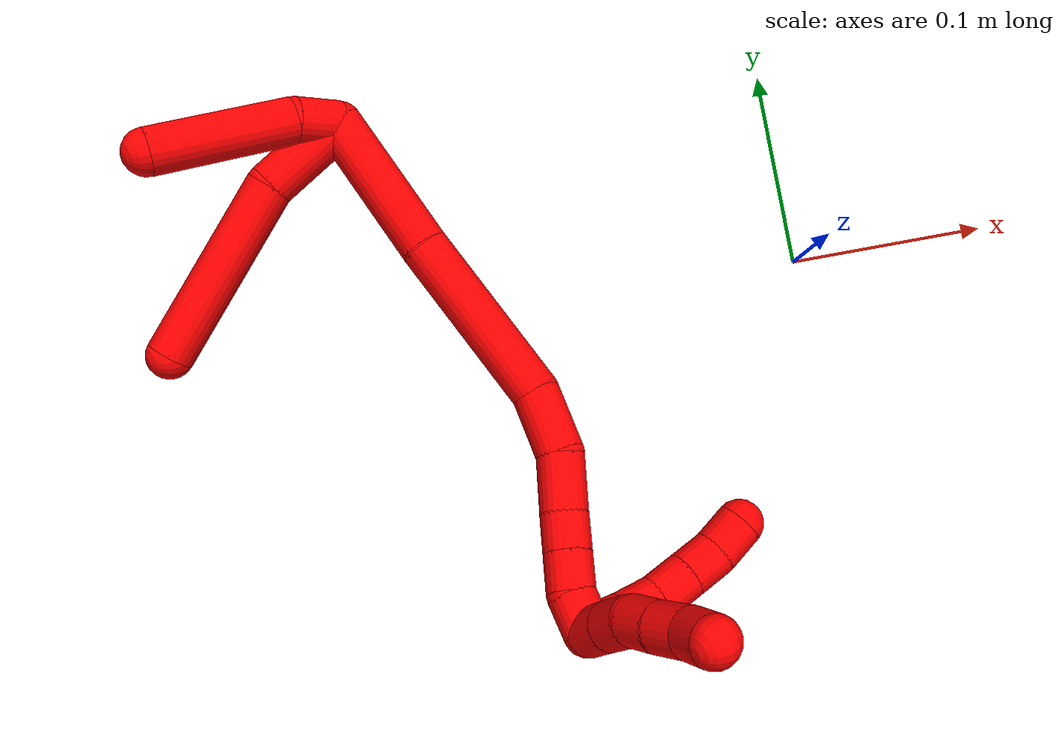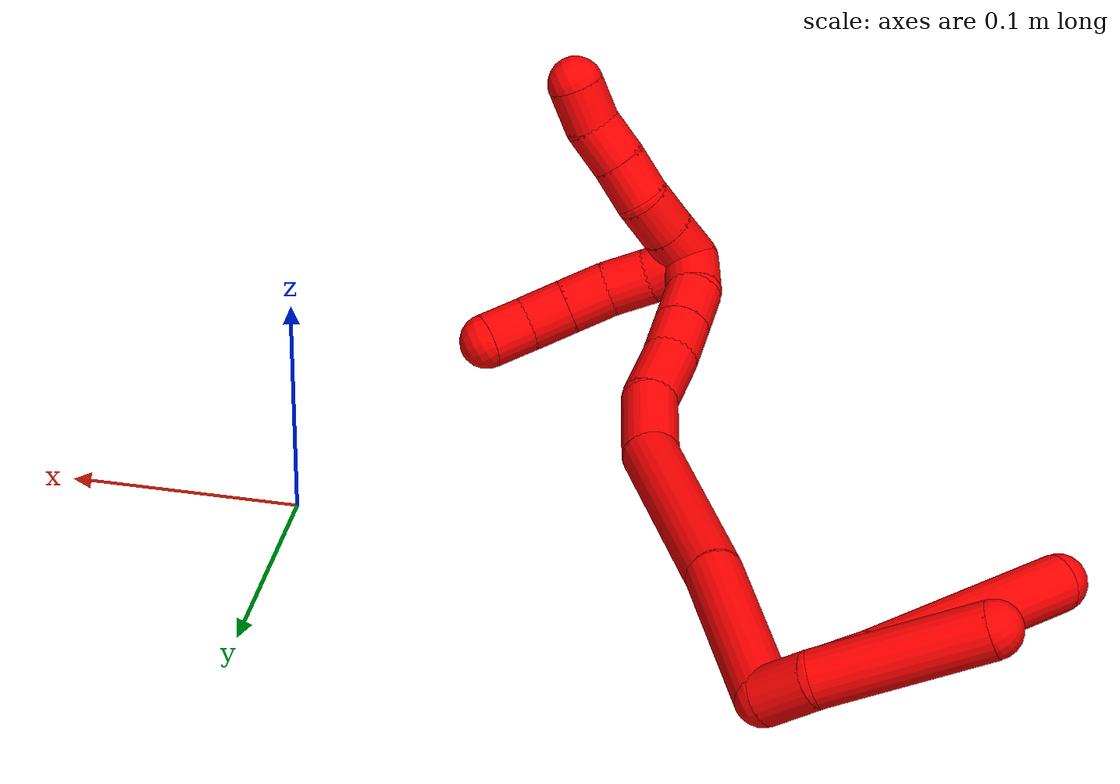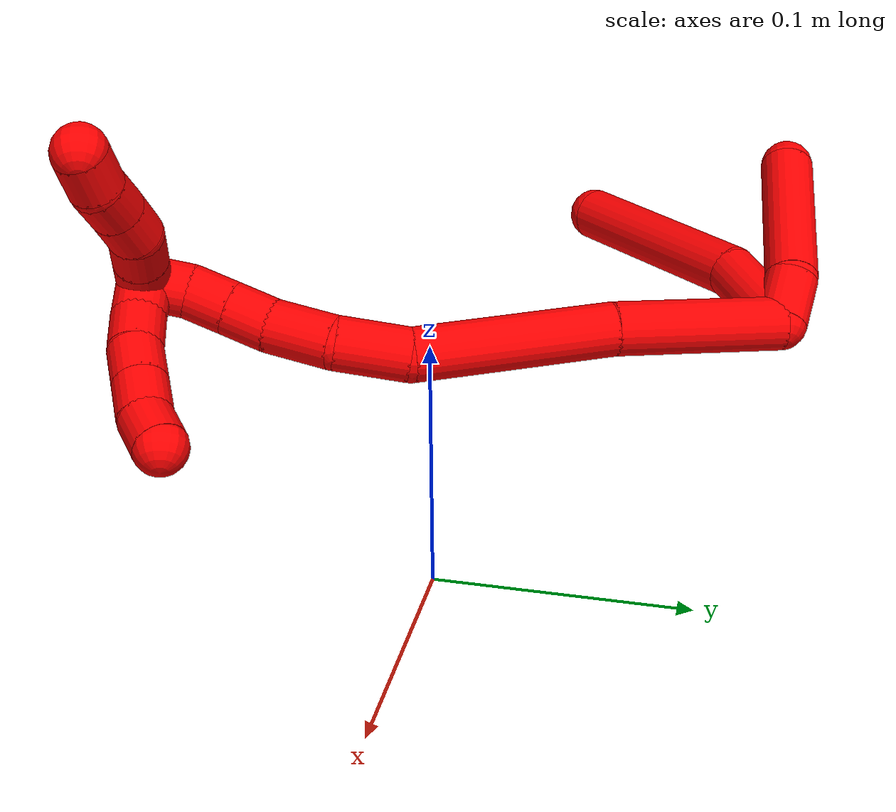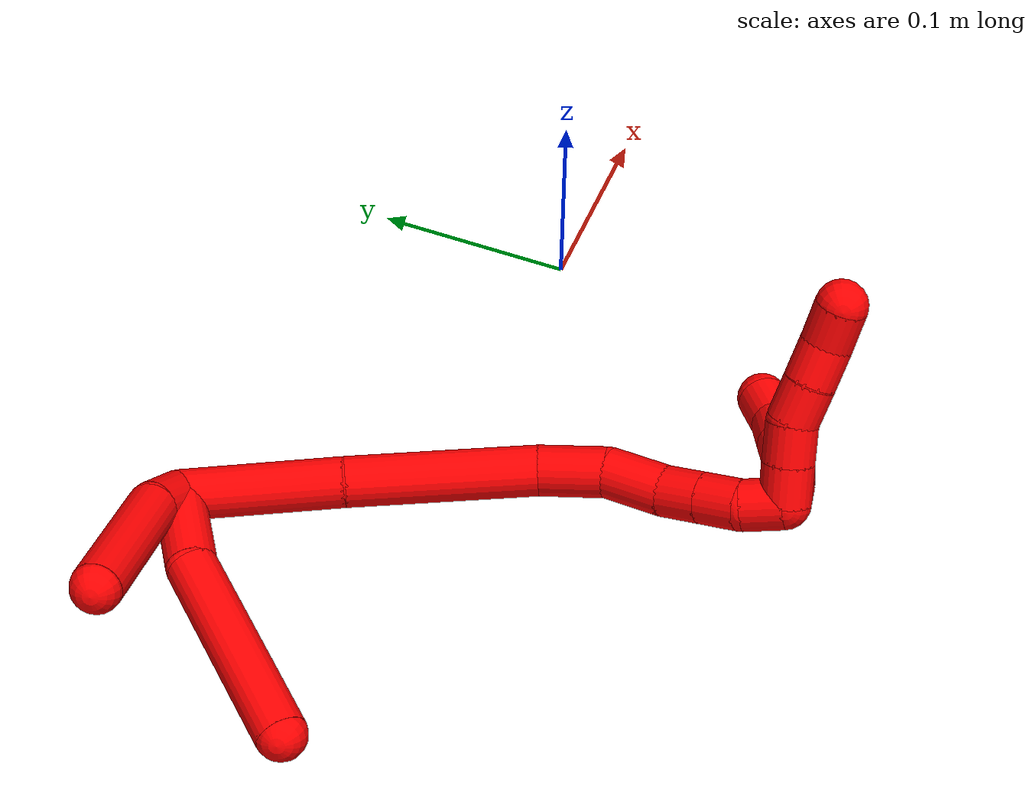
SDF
<sdf version="1.7">
 <world name="default">
  <model name="2">
   <static>0</static>
   <link name="2">
    <collision name="collision-cylinder-e_1_2_8">
     <pose>-0.004484 -0.010913 0.021138 0.476577 -0.186309 -0.045379</pose>
     <geometry><cylinder><radius>0.0125</radius><length>0.048415</length></cylinder></geometry>
     <surface>
      <friction><ode><mu>1.16</mu><mu2>1.16</mu2><slip1>0</slip1><slip2>0</slip2></ode></friction>
      <contact><ode><kp>1e+06</kp><kd>1</kd><max_vel>0</max_vel><min_depth>0.001</min_depth></ode></contact>
     </surface>
    </collision>
    <visual name="visual-cylinder-e_1_2_8">
     <pose>-0.004484 -0.010913 0.021138 0.476577 -0.186309 -0.045379</pose>
     <geometry><cylinder><radius>0.0125</radius><length>0.048415</length></cylinder></geometry>
     <material><ambient>1 0 0 1</ambient></material>
    </visual>
    <collision name="collision-cylinder-e_2_8_6">
     <pose>-0.016274 -0.05754 0.077645 0.790247 -0.144332 -0.060281</pose>
     <geometry><cylinder><radius>0.0125</radius><length>0.101585</length></cylinder></geometry>
     <surface>
      <friction><ode><mu>1.16</mu><mu2>1.16</mu2><slip1>0</slip1><slip2>0</slip2></ode></friction>
      <contact><ode><kp>1e+06</kp><kd>1</kd><max_vel>0</max_vel><min_depth>0.001</min_depth></ode></contact>
     </surface>
    </collision>
    <visual name="visual-cylinder-e_2_8_6">
     <pose>-0.016274 -0.05754 0.077645 0.790247 -0.144332 -0.060281</pose>
     <geometry><cylinder><radius>0.0125</radius><length>0.101585</length></cylinder></geometry>
     <material><ambient>1 0 0 1</ambient></material>
    </visual>
    <collision name="collision-cylinder-e_1_2_9">
     <pose>-0.000973 0.004117 0.011666 -0.339281 -0.078489 0.013451</pose>
     <geometry><cylinder><radius>0.0125</radius><length>0.024818</length></cylinder></geometry>
     <surface>
      <friction><ode><mu>1.16</mu><mu2>1.16</mu2><slip1>0</slip1><slip2>0</slip2></ode></friction>
      <contact><ode><kp>1e+06</kp><kd>1</kd><max_vel>0</max_vel><min_depth>0.001</min_depth></ode></contact>
     </surface>
    </collision>
    <visual name="visual-cylinder-e_1_2_9">
     <pose>-0.000973 0.004117 0.011666 -0.339281 -0.078489 0.013451</pose>
     <geometry><cylinder><radius>0.0125</radius><length>0.024818</length></cylinder></geometry>
     <material><ambient>1 0 0 1</ambient></material>
    </visual>
    <collision name="collision-cylinder-e_2_9_5">
     <pose>-0.009214 0.009836 0.060178 -0.043451 -0.19456 0.004241</pose>
     <geometry><cylinder><radius>0.0125</radius><length>0.075182</length></cylinder></geometry>
     <surface>
      <friction><ode><mu>1.16</mu><mu2>1.16</mu2><slip1>0</slip1><slip2>0</slip2></ode></friction>
      <contact><ode><kp>1e+06</kp><kd>1</kd><max_vel>0</max_vel><min_depth>0.001</min_depth></ode></contact>
     </surface>
    </collision>
    <visual name="visual-cylinder-e_2_9_5">
     <pose>-0.009214 0.009836 0.060178 -0.043451 -0.19456 0.004241</pose>
     <geometry><cylinder><radius>0.0125</radius><length>0.075182</length></cylinder></geometry>
     <material><ambient>1 0 0 1</ambient></material>
    </visual>
    <collision name="collision-cylinder-e_1_2_10">
     <pose>0.024044 -0.032022 -0.003699 1.6858 0.640868 0.713003</pose>
     <geometry><cylinder><radius>0.0125</radius><length>0.080428</length></cylinder></geometry>
     <surface>
      <friction><ode><mu>1.16</mu><mu2>1.16</mu2><slip1>0</slip1><slip2>0</slip2></ode></friction>
      <contact><ode><kp>1e+06</kp><kd>1</kd><max_vel>0</max_vel><min_depth>0.001</min_depth></ode></contact>
     </surface>
    </collision>
    <visual name="visual-cylinder-e_1_2_10">
     <pose>0.024044 -0.032022 -0.003699 1.6858 0.640868 0.713003</pose>
     <geometry><cylinder><radius>0.0125</radius><length>0.080428</length></cylinder></geometry>
     <material><ambient>1 0 0 1</ambient></material>
    </visual>
    <collision name="collision-cylinder-e_2_10_11">
     <pose>0.074154 -0.102559 -0.015297 1.77309 0.58546 0.707835</pose>
     <geometry><cylinder><radius>0.0125</radius><length>0.094346</length></cylinder></geometry>
     <surface>
      <friction><ode><mu>1.16</mu><mu2>1.16</mu2><slip1>0</slip1><slip2>0</slip2></ode></friction>
      <contact><ode><kp>1e+06</kp><kd>1</kd><max_vel>0</max_vel><min_depth>0.001</min_depth></ode></contact>
     </surface>
    </collision>
    <visual name="visual-cylinder-e_2_10_11">
     <pose>0.074154 -0.102559 -0.015297 1.77309 0.58546 0.707835</pose>
     <geometry><cylinder><radius>0.0125</radius><length>0.094346</length></cylinder></geometry>
     <material><ambient>1 0 0 1</ambient></material>
    </visual>
    <collision name="collision-cylinder-e_3_11_12">
     <pose>0.110061 -0.154836 -0.020586 1.38337 0.612389 0.512138</pose>
     <geometry><cylinder><radius>0.0125</radius><length>0.034236</length></cylinder></geometry>
     <surface>
      <friction><ode><mu>1.16</mu><mu2>1.16</mu2><slip1>0</slip1><slip2>0</slip2></ode></friction>
      <contact><ode><kp>1e+06</kp><kd>1</kd><max_vel>0</max_vel><min_depth>0.001</min_depth></ode></contact>
     </surface>
    </collision>
    <visual name="visual-cylinder-e_3_11_12">
     <pose>0.110061 -0.154836 -0.020586 1.38337 0.612389 0.512138</pose>
     <geometry><cylinder><radius>0.0125</radius><length>0.034236</length></cylinder></geometry>
     <material><ambient>1 0 0 1</ambient></material>
    </visual>
    <collision name="collision-cylinder-e_4_12_13">
     <pose>0.125453 -0.181393 -0.012091 1.13967 0.375493 0.242268</pose>
     <geometry><cylinder><radius>0.0125</radius><length>0.030277</length></cylinder></geometry>
     <surface>
      <friction><ode><mu>1.16</mu><mu2>1.16</mu2><slip1>0</slip1><slip2>0</slip2></ode></friction>
      <contact><ode><kp>1e+06</kp><kd>1</kd><max_vel>0</max_vel><min_depth>0.001</min_depth></ode></contact>
     </surface>
    </collision>
    <visual name="visual-cylinder-e_4_12_13">
     <pose>0.125453 -0.181393 -0.012091 1.13967 0.375493 0.242268</pose>
     <geometry><cylinder><radius>0.0125</radius><length>0.030277</length></cylinder></geometry>
     <material><ambient>1 0 0 1</ambient></material>
    </visual>
    <collision name="collision-cylinder-e_5_13_14">
     <pose>0.136018 -0.201728 -0.001721 1.0342 0.519123 0.299782</pose>
     <geometry><cylinder><radius>0.0125</radius><length>0.020209</length></cylinder></geometry>
     <surface>
      <friction><ode><mu>1.16</mu><mu2>1.16</mu2><slip1>0</slip1><slip2>0</slip2></ode></friction>
      <contact><ode><kp>1e+06</kp><kd>1</kd><max_vel>0</max_vel><min_depth>0.001</min_depth></ode></contact>
     </surface>
    </collision>
    <visual name="visual-cylinder-e_5_13_14">
     <pose>0.136018 -0.201728 -0.001721 1.0342 0.519123 0.299782</pose>
     <geometry><cylinder><radius>0.0125</radius><length>0.020209</length></cylinder></geometry>
     <material><ambient>1 0 0 1</ambient></material>
    </visual>
    <collision name="collision-cylinder-e_6_14_15">
     <pose>0.14601 -0.216842 0.007236 1.0375 0.51516 0.298549</pose>
     <geometry><cylinder><radius>0.0125</radius><length>0.020215</length></cylinder></geometry>
     <surface>
      <friction><ode><mu>1.16</mu><mu2>1.16</mu2><slip1>0</slip1><slip2>0</slip2></ode></friction>
      <contact><ode><kp>1e+06</kp><kd>1</kd><max_vel>0</max_vel><min_depth>0.001</min_depth></ode></contact>
     </surface>
    </collision>
    <visual name="visual-cylinder-e_6_14_15">
     <pose>0.14601 -0.216842 0.007236 1.0375 0.51516 0.298549</pose>
     <geometry><cylinder><radius>0.0125</radius><length>0.020215</length></cylinder></geometry>
     <material><ambient>1 0 0 1</ambient></material>
    </visual>
    <collision name="collision-cylinder-e_7_15_1">
     <pose>0.157451 -0.232097 0.01318 1.38132 0.690521 0.577852</pose>
     <geometry><cylinder><radius>0.0125</radius><length>0.020289</length></cylinder></geometry>
     <surface>
      <friction><ode><mu>1.16</mu><mu2>1.16</mu2><slip1>0</slip1><slip2>0</slip2></ode></friction>
      <contact><ode><kp>1e+06</kp><kd>1</kd><max_vel>0</max_vel><min_depth>0.001</min_depth></ode></contact>
     </surface>
    </collision>
    <visual name="visual-cylinder-e_7_15_1">
     <pose>0.157451 -0.232097 0.01318 1.38132 0.690521 0.577852</pose>
     <geometry><cylinder><radius>0.0125</radius><length>0.020289</length></cylinder></geometry>
     <material><ambient>1 0 0 1</ambient></material>
    </visual>
    <collision name="collision-cylinder-e_1_1_16">
     <pose>0.164992 -0.240366 0.004729 3.0824 0.108091 2.14008</pose>
     <geometry><cylinder><radius>0.0125</radius><length>0.02</length></cylinder></geometry>
     <surface>
      <friction><ode><mu>1.16</mu><mu2>1.16</mu2><slip1>0</slip1><slip2>0</slip2></ode></friction>
      <contact><ode><kp>1e+06</kp><kd>1</kd><max_vel>0</max_vel><min_depth>0.001</min_depth></ode></contact>
     </surface>
    </collision>
    <visual name="visual-cylinder-e_1_1_16">
     <pose>0.164992 -0.240366 0.004729 3.0824 0.108091 2.14008</pose>
     <geometry><cylinder><radius>0.0125</radius><length>0.02</length></cylinder></geometry>
     <material><ambient>1 0 0 1</ambient></material>
    </visual>
    <collision name="collision-cylinder-e_2_16_17">
     <pose>0.167951 -0.240208 -0.014988 -3.06559 0.1892 -2.37938</pose>
     <geometry><cylinder><radius>0.0125</radius><length>0.02</length></cylinder></geometry>
     <surface>
      <friction><ode><mu>1.16</mu><mu2>1.16</mu2><slip1>0</slip1><slip2>0</slip2></ode></friction>
      <contact><ode><kp>1e+06</kp><kd>1</kd><max_vel>0</max_vel><min_depth>0.001</min_depth></ode></contact>
     </surface>
    </collision>
    <visual name="visual-cylinder-e_2_16_17">
     <pose>0.167951 -0.240208 -0.014988 -3.06559 0.1892 -2.37938</pose>
     <geometry><cylinder><radius>0.0125</radius><length>0.02</length></cylinder></geometry>
     <material><ambient>1 0 0 1</ambient></material>
    </visual>
    <collision name="collision-cylinder-e_3_17_18">
     <pose>0.170714 -0.237266 -0.034497 -2.91928 0.088364 -0.754265</pose>
     <geometry><cylinder><radius>0.0125</radius><length>0.02</length></cylinder></geometry>
     <surface>
      <friction><ode><mu>1.16</mu><mu2>1.16</mu2><slip1>0</slip1><slip2>0</slip2></ode></friction>
      <contact><ode><kp>1e+06</kp><kd>1</kd><max_vel>0</max_vel><min_depth>0.001</min_depth></ode></contact>
     </surface>
    </collision>
    <visual name="visual-cylinder-e_3_17_18">
     <pose>0.170714 -0.237266 -0.034497 -2.91928 0.088364 -0.754265</pose>
     <geometry><cylinder><radius>0.0125</radius><length>0.02</length></cylinder></geometry>
     <material><ambient>1 0 0 1</ambient></material>
    </visual>
    <collision name="collision-cylinder-e_4_18_19">
     <pose>0.172444 -0.232913 -0.053941 -2.92342 0.084817 -0.739292</pose>
     <geometry><cylinder><radius>0.0125</radius><length>0.02</length></cylinder></geometry>
     <surface>
      <friction><ode><mu>1.16</mu><mu2>1.16</mu2><slip1>0</slip1><slip2>0</slip2></ode></friction>
      <contact><ode><kp>1e+06</kp><kd>1</kd><max_vel>0</max_vel><min_depth>0.001</min_depth></ode></contact>
     </surface>
    </collision>
    <visual name="visual-cylinder-e_4_18_19">
     <pose>0.172444 -0.232913 -0.053941 -2.92342 0.084817 -0.739292</pose>
     <geometry><cylinder><radius>0.0125</radius><length>0.02</length></cylinder></geometry>
     <material><ambient>1 0 0 1</ambient></material>
    </visual>
    <collision name="collision-cylinder-e_5_19_4">
     <pose>0.174251 -0.226189 -0.072513 -2.66485 0.096122 -0.390829</pose>
     <geometry><cylinder><radius>0.0125</radius><length>0.02</length></cylinder></geometry>
     <surface>
      <friction><ode><mu>1.16</mu><mu2>1.16</mu2><slip1>0</slip1><slip2>0</slip2></ode></friction>
      <contact><ode><kp>1e+06</kp><kd>1</kd><max_vel>0</max_vel><min_depth>0.001</min_depth></ode></contact>
     </surface>
    </collision>
    <visual name="visual-cylinder-e_5_19_4">
     <pose>0.174251 -0.226189 -0.072513 -2.66485 0.096122 -0.390829</pose>
     <geometry><cylinder><radius>0.0125</radius><length>0.02</length></cylinder></geometry>
     <material><ambient>1 0 0 1</ambient></material>
    </visual>
    <collision name="collision-cylinder-e_1_1_20">
     <pose>0.172576 -0.23484 0.0139 -1.72214 1.04776 -1.18408</pose>
     <geometry><cylinder><radius>0.0125</radius><length>0.02</length></cylinder></geometry>
     <surface>
      <friction><ode><mu>1.16</mu><mu2>1.16</mu2><slip1>0</slip1><slip2>0</slip2></ode></friction>
      <contact><ode><kp>1e+06</kp><kd>1</kd><max_vel>0</max_vel><min_depth>0.001</min_depth></ode></contact>
     </surface>
    </collision>
    <visual name="visual-cylinder-e_1_1_20">
     <pose>0.172576 -0.23484 0.0139 -1.72214 1.04776 -1.18408</pose>
     <geometry><cylinder><radius>0.0125</radius><length>0.02</length></cylinder></geometry>
     <material><ambient>1 0 0 1</ambient></material>
    </visual>
    <collision name="collision-cylinder-e_2_20_21">
     <pose>0.189966 -0.225056 0.012546 -1.69427 1.06068 -1.17181</pose>
     <geometry><cylinder><radius>0.0125</radius><length>0.02</length></cylinder></geometry>
     <surface>
      <friction><ode><mu>1.16</mu><mu2>1.16</mu2><slip1>0</slip1><slip2>0</slip2></ode></friction>
      <contact><ode><kp>1e+06</kp><kd>1</kd><max_vel>0</max_vel><min_depth>0.001</min_depth></ode></contact>
     </surface>
    </collision>
    <visual name="visual-cylinder-e_2_20_21">
     <pose>0.189966 -0.225056 0.012546 -1.69427 1.06068 -1.17181</pose>
     <geometry><cylinder><radius>0.0125</radius><length>0.02</length></cylinder></geometry>
     <material><ambient>1 0 0 1</ambient></material>
    </visual>
    <collision name="collision-cylinder-e_3_21_22">
     <pose>0.208496 -0.218259 0.011663 -1.71408 1.37231 -1.51479</pose>
     <geometry><cylinder><radius>0.0125</radius><length>0.02</length></cylinder></geometry>
     <surface>
      <friction><ode><mu>1.16</mu><mu2>1.16</mu2><slip1>0</slip1><slip2>0</slip2></ode></friction>
      <contact><ode><kp>1e+06</kp><kd>1</kd><max_vel>0</max_vel><min_depth>0.001</min_depth></ode></contact>
     </surface>
    </collision>
    <visual name="visual-cylinder-e_3_21_22">
     <pose>0.208496 -0.218259 0.011663 -1.71408 1.37231 -1.51479</pose>
     <geometry><cylinder><radius>0.0125</radius><length>0.02</length></cylinder></geometry>
     <material><ambient>1 0 0 1</ambient></material>
    </visual>
    <collision name="collision-cylinder-e_4_22_23">
     <pose>0.228059 -0.214339 0.010434 -2.01957 1.35064 -1.81113</pose>
     <geometry><cylinder><radius>0.0125</radius><length>0.02</length></cylinder></geometry>
     <surface>
      <friction><ode><mu>1.16</mu><mu2>1.16</mu2><slip1>0</slip1><slip2>0</slip2></ode></friction>
      <contact><ode><kp>1e+06</kp><kd>1</kd><max_vel>0</max_vel><min_depth>0.001</min_depth></ode></contact>
     </surface>
    </collision>
    <visual name="visual-cylinder-e_4_22_23">
     <pose>0.228059 -0.214339 0.010434 -2.01957 1.35064 -1.81113</pose>
     <geometry><cylinder><radius>0.0125</radius><length>0.02</length></cylinder></geometry>
     <material><ambient>1 0 0 1</ambient></material>
    </visual>
    <collision name="collision-cylinder-e_5_23_3">
     <pose>0.247352 -0.209765 0.010999 -1.04498 1.26464 -0.798531</pose>
     <geometry><cylinder><radius>0.0125</radius><length>0.02</length></cylinder></geometry>
     <surface>
      <friction><ode><mu>1.16</mu><mu2>1.16</mu2><slip1>0</slip1><slip2>0</slip2></ode></friction>
      <contact><ode><kp>1e+06</kp><kd>1</kd><max_vel>0</max_vel><min_depth>0.001</min_depth></ode></contact>
     </surface>
    </collision>
    <visual name="visual-cylinder-e_5_23_3">
     <pose>0.247352 -0.209765 0.010999 -1.04498 1.26464 -0.798531</pose>
     <geometry><cylinder><radius>0.0125</radius><length>0.02</length></cylinder></geometry>
     <material><ambient>1 0 0 1</ambient></material>
    </visual>
    <collision name="collision-sphere-3">
     <pose>0.256887 -0.207158 0.012512 0 -0 0</pose>
     <geometry><sphere><radius>0.0125</radius></sphere></geometry>
     <surface>
      <friction><ode><mu>1.16</mu><mu2>1.16</mu2><slip1>0</slip1><slip2>0</slip2></ode></friction>
      <contact><ode><kp>1e+06</kp><kd>1</kd><max_vel>0</max_vel><min_depth>0.001</min_depth></ode></contact>
     </surface>
    </collision>
    <visual name="visual-sphere-3">
     <pose>0.256887 -0.207158 0.012512 0 -0 0</pose>
     <geometry><sphere><radius>0.0125</radius></sphere></geometry>
     <material><ambient>1 0 0 1</ambient></material>
    </visual>
    <collision name="collision-sphere-23">
     <pose>0.237817 -0.212372 0.009486 0 -0 0</pose>
     <geometry><sphere><radius>0.0125</radius></sphere></geometry>
     <surface>
      <friction><ode><mu>1.16</mu><mu2>1.16</mu2><slip1>0</slip1><slip2>0</slip2></ode></friction>
      <contact><ode><kp>1e+06</kp><kd>1</kd><max_vel>0</max_vel><min_depth>0.001</min_depth></ode></contact>
     </surface>
    </collision>
    <visual name="visual-sphere-23">
     <pose>0.237817 -0.212372 0.009486 0 -0 0</pose>
     <geometry><sphere><radius>0.0125</radius></sphere></geometry>
     <material><ambient>1 0 0 1</ambient></material>
    </visual>
    <collision name="collision-sphere-22">
     <pose>0.2183 -0.216307 0.011381 0 -0 0</pose>
     <geometry><sphere><radius>0.0125</radius></sphere></geometry>
     <surface>
      <friction><ode><mu>1.16</mu><mu2>1.16</mu2><slip1>0</slip1><slip2>0</slip2></ode></friction>
      <contact><ode><kp>1e+06</kp><kd>1</kd><max_vel>0</max_vel><min_depth>0.001</min_depth></ode></contact>
     </surface>
    </collision>
    <visual name="visual-sphere-22">
     <pose>0.2183 -0.216307 0.011381 0 -0 0</pose>
     <geometry><sphere><radius>0.0125</radius></sphere></geometry>
     <material><ambient>1 0 0 1</ambient></material>
    </visual>
    <collision name="collision-sphere-21">
     <pose>0.198693 -0.22021 0.011944 0 -0 0</pose>
     <geometry><sphere><radius>0.0125</radius></sphere></geometry>
     <surface>
      <friction><ode><mu>1.16</mu><mu2>1.16</mu2><slip1>0</slip1><slip2>0</slip2></ode></friction>
      <contact><ode><kp>1e+06</kp><kd>1</kd><max_vel>0</max_vel><min_depth>0.001</min_depth></ode></contact>
     </surface>
    </collision>
    <visual name="visual-sphere-21">
     <pose>0.198693 -0.22021 0.011944 0 -0 0</pose>
     <geometry><sphere><radius>0.0125</radius></sphere></geometry>
     <material><ambient>1 0 0 1</ambient></material>
    </visual>
    <collision name="collision-sphere-20">
     <pose>0.181239 -0.229902 0.013147 0 -0 0</pose>
     <geometry><sphere><radius>0.0125</radius></sphere></geometry>
     <surface>
      <friction><ode><mu>1.16</mu><mu2>1.16</mu2><slip1>0</slip1><slip2>0</slip2></ode></friction>
      <contact><ode><kp>1e+06</kp><kd>1</kd><max_vel>0</max_vel><min_depth>0.001</min_depth></ode></contact>
     </surface>
    </collision>
    <visual name="visual-sphere-20">
     <pose>0.181239 -0.229902 0.013147 0 -0 0</pose>
     <geometry><sphere><radius>0.0125</radius></sphere></geometry>
     <material><ambient>1 0 0 1</ambient></material>
    </visual>
    <collision name="collision-sphere-4">
     <pose>0.175211 -0.221621 -0.081357 0 -0 0</pose>
     <geometry><sphere><radius>0.0125</radius></sphere></geometry>
     <surface>
      <friction><ode><mu>1.16</mu><mu2>1.16</mu2><slip1>0</slip1><slip2>0</slip2></ode></friction>
      <contact><ode><kp>1e+06</kp><kd>1</kd><max_vel>0</max_vel><min_depth>0.001</min_depth></ode></contact>
     </surface>
    </collision>
    <visual name="visual-sphere-4">
     <pose>0.175211 -0.221621 -0.081357 0 -0 0</pose>
     <geometry><sphere><radius>0.0125</radius></sphere></geometry>
     <material><ambient>1 0 0 1</ambient></material>
    </visual>
    <collision name="collision-sphere-10">
     <pose>0.048087 -0.064043 -0.007398 0 -0 0</pose>
     <geometry><sphere><radius>0.0125</radius></sphere></geometry>
     <surface>
      <friction><ode><mu>1.16</mu><mu2>1.16</mu2><slip1>0</slip1><slip2>0</slip2></ode></friction>
      <contact><ode><kp>1e+06</kp><kd>1</kd><max_vel>0</max_vel><min_depth>0.001</min_depth></ode></contact>
     </surface>
    </collision>
    <visual name="visual-sphere-10">
     <pose>0.048087 -0.064043 -0.007398 0 -0 0</pose>
     <geometry><sphere><radius>0.0125</radius></sphere></geometry>
     <material><ambient>1 0 0 1</ambient></material>
    </visual>
    <collision name="collision-sphere-5">
     <pose>-0.016481 0.011438 0.097025 0 -0 0</pose>
     <geometry><sphere><radius>0.0125</radius></sphere></geometry>
     <surface>
      <friction><ode><mu>1.16</mu><mu2>1.16</mu2><slip1>0</slip1><slip2>0</slip2></ode></friction>
      <contact><ode><kp>1e+06</kp><kd>1</kd><max_vel>0</max_vel><min_depth>0.001</min_depth></ode></contact>
     </surface>
    </collision>
    <visual name="visual-sphere-5">
     <pose>-0.016481 0.011438 0.097025 0 -0 0</pose>
     <geometry><sphere><radius>0.0125</radius></sphere></geometry>
     <material><ambient>1 0 0 1</ambient></material>
    </visual>
    <collision name="collision-sphere-6">
     <pose>-0.023579 -0.093254 0.113015 0 -0 0</pose>
     <geometry><sphere><radius>0.0125</radius></sphere></geometry>
     <surface>
      <friction><ode><mu>1.16</mu><mu2>1.16</mu2><slip1>0</slip1><slip2>0</slip2></ode></friction>
      <contact><ode><kp>1e+06</kp><kd>1</kd><max_vel>0</max_vel><min_depth>0.001</min_depth></ode></contact>
     </surface>
    </collision>
    <visual name="visual-sphere-6">
     <pose>-0.023579 -0.093254 0.113015 0 -0 0</pose>
     <geometry><sphere><radius>0.0125</radius></sphere></geometry>
     <material><ambient>1 0 0 1</ambient></material>
    </visual>
    <collision name="collision-sphere-9">
     <pose>-0.001946 0.008234 0.023331 0 -0 0</pose>
     <geometry><sphere><radius>0.0125</radius></sphere></geometry>
     <surface>
      <friction><ode><mu>1.16</mu><mu2>1.16</mu2><slip1>0</slip1><slip2>0</slip2></ode></friction>
      <contact><ode><kp>1e+06</kp><kd>1</kd><max_vel>0</max_vel><min_depth>0.001</min_depth></ode></contact>
     </surface>
    </collision>
    <visual name="visual-sphere-9">
     <pose>-0.001946 0.008234 0.023331 0 -0 0</pose>
     <geometry><sphere><radius>0.0125</radius></sphere></geometry>
     <material><ambient>1 0 0 1</ambient></material>
    </visual>
    <collision name="collision-sphere-2">
     <geometry><sphere><radius>0.0125</radius></sphere></geometry>
     <surface>
      <friction><ode><mu>1.16</mu><mu2>1.16</mu2><slip1>0</slip1><slip2>0</slip2></ode></friction>
      <contact><ode><kp>1e+06</kp><kd>1</kd><max_vel>0</max_vel><min_depth>0.001</min_depth></ode></contact>
     </surface>
    </collision>
    <visual name="visual-sphere-2">
     <geometry><sphere><radius>0.0125</radius></sphere></geometry>
     <material><ambient>1 0 0 1</ambient></material>
    </visual>
    <collision name="collision-sphere-19">
     <pose>0.173291 -0.230757 -0.063669 0 -0 0</pose>
     <geometry><sphere><radius>0.0125</radius></sphere></geometry>
     <surface>
      <friction><ode><mu>1.16</mu><mu2>1.16</mu2><slip1>0</slip1><slip2>0</slip2></ode></friction>
      <contact><ode><kp>1e+06</kp><kd>1</kd><max_vel>0</max_vel><min_depth>0.001</min_depth></ode></contact>
     </surface>
    </collision>
    <visual name="visual-sphere-19">
     <pose>0.173291 -0.230757 -0.063669 0 -0 0</pose>
     <geometry><sphere><radius>0.0125</radius></sphere></geometry>
     <material><ambient>1 0 0 1</ambient></material>
    </visual>
    <collision name="collision-sphere-8">
     <pose>-0.008968 -0.021826 0.042276 0 -0 0</pose>
     <geometry><sphere><radius>0.0125</radius></sphere></geometry>
     <surface>
      <friction><ode><mu>1.16</mu><mu2>1.16</mu2><slip1>0</slip1><slip2>0</slip2></ode></friction>
      <contact><ode><kp>1e+06</kp><kd>1</kd><max_vel>0</max_vel><min_depth>0.001</min_depth></ode></contact>
     </surface>
    </collision>
    <visual name="visual-sphere-8">
     <pose>-0.008968 -0.021826 0.042276 0 -0 0</pose>
     <geometry><sphere><radius>0.0125</radius></sphere></geometry>
     <material><ambient>1 0 0 1</ambient></material>
    </visual>
    <collision name="collision-sphere-11">
     <pose>0.100221 -0.141074 -0.023196 0 -0 0</pose>
     <geometry><sphere><radius>0.0125</radius></sphere></geometry>
     <surface>
      <friction><ode><mu>1.16</mu><mu2>1.16</mu2><slip1>0</slip1><slip2>0</slip2></ode></friction>
      <contact><ode><kp>1e+06</kp><kd>1</kd><max_vel>0</max_vel><min_depth>0.001</min_depth></ode></contact>
     </surface>
    </collision>
    <visual name="visual-sphere-11">
     <pose>0.100221 -0.141074 -0.023196 0 -0 0</pose>
     <geometry><sphere><radius>0.0125</radius></sphere></geometry>
     <material><ambient>1 0 0 1</ambient></material>
    </visual>
    <collision name="collision-sphere-12">
     <pose>0.119901 -0.168598 -0.017976 0 -0 0</pose>
     <geometry><sphere><radius>0.0125</radius></sphere></geometry>
     <surface>
      <friction><ode><mu>1.16</mu><mu2>1.16</mu2><slip1>0</slip1><slip2>0</slip2></ode></friction>
      <contact><ode><kp>1e+06</kp><kd>1</kd><max_vel>0</max_vel><min_depth>0.001</min_depth></ode></contact>
     </surface>
    </collision>
    <visual name="visual-sphere-12">
     <pose>0.119901 -0.168598 -0.017976 0 -0 0</pose>
     <geometry><sphere><radius>0.0125</radius></sphere></geometry>
     <material><ambient>1 0 0 1</ambient></material>
    </visual>
    <collision name="collision-sphere-13">
     <pose>0.131005 -0.194188 -0.006206 0 -0 0</pose>
     <geometry><sphere><radius>0.0125</radius></sphere></geometry>
     <surface>
      <friction><ode><mu>1.16</mu><mu2>1.16</mu2><slip1>0</slip1><slip2>0</slip2></ode></friction>
      <contact><ode><kp>1e+06</kp><kd>1</kd><max_vel>0</max_vel><min_depth>0.001</min_depth></ode></contact>
     </surface>
    </collision>
    <visual name="visual-sphere-13">
     <pose>0.131005 -0.194188 -0.006206 0 -0 0</pose>
     <geometry><sphere><radius>0.0125</radius></sphere></geometry>
     <material><ambient>1 0 0 1</ambient></material>
    </visual>
    <collision name="collision-sphere-14">
     <pose>0.141031 -0.209268 0.002764 0 -0 0</pose>
     <geometry><sphere><radius>0.0125</radius></sphere></geometry>
     <surface>
      <friction><ode><mu>1.16</mu><mu2>1.16</mu2><slip1>0</slip1><slip2>0</slip2></ode></friction>
      <contact><ode><kp>1e+06</kp><kd>1</kd><max_vel>0</max_vel><min_depth>0.001</min_depth></ode></contact>
     </surface>
    </collision>
    <visual name="visual-sphere-14">
     <pose>0.141031 -0.209268 0.002764 0 -0 0</pose>
     <geometry><sphere><radius>0.0125</radius></sphere></geometry>
     <material><ambient>1 0 0 1</ambient></material>
    </visual>
    <collision name="collision-sphere-15">
     <pose>0.15099 -0.224416 0.011707 0 -0 0</pose>
     <geometry><sphere><radius>0.0125</radius></sphere></geometry>
     <surface>
      <friction><ode><mu>1.16</mu><mu2>1.16</mu2><slip1>0</slip1><slip2>0</slip2></ode></friction>
      <contact><ode><kp>1e+06</kp><kd>1</kd><max_vel>0</max_vel><min_depth>0.001</min_depth></ode></contact>
     </surface>
    </collision>
    <visual name="visual-sphere-15">
     <pose>0.15099 -0.224416 0.011707 0 -0 0</pose>
     <geometry><sphere><radius>0.0125</radius></sphere></geometry>
     <material><ambient>1 0 0 1</ambient></material>
    </visual>
    <collision name="collision-sphere-1">
     <pose>0.163913 -0.239778 0.014653 0 -0 0</pose>
     <geometry><sphere><radius>0.0125</radius></sphere></geometry>
     <surface>
      <friction><ode><mu>1.16</mu><mu2>1.16</mu2><slip1>0</slip1><slip2>0</slip2></ode></friction>
      <contact><ode><kp>1e+06</kp><kd>1</kd><max_vel>0</max_vel><min_depth>0.001</min_depth></ode></contact>
     </surface>
    </collision>
    <visual name="visual-sphere-1">
     <pose>0.163913 -0.239778 0.014653 0 -0 0</pose>
     <geometry><sphere><radius>0.0125</radius></sphere></geometry>
     <material><ambient>1 0 0 1</ambient></material>
    </visual>
    <collision name="collision-sphere-18">
     <pose>0.171597 -0.23507 -0.044213 0 -0 0</pose>
     <geometry><sphere><radius>0.0125</radius></sphere></geometry>
     <surface>
      <friction><ode><mu>1.16</mu><mu2>1.16</mu2><slip1>0</slip1><slip2>0</slip2></ode></friction>
      <contact><ode><kp>1e+06</kp><kd>1</kd><max_vel>0</max_vel><min_depth>0.001</min_depth></ode></contact>
     </surface>
    </collision>
    <visual name="visual-sphere-18">
     <pose>0.171597 -0.23507 -0.044213 0 -0 0</pose>
     <geometry><sphere><radius>0.0125</radius></sphere></geometry>
     <material><ambient>1 0 0 1</ambient></material>
    </visual>
    <collision name="collision-sphere-16">
     <pose>0.16607 -0.240954 -0.005195 0 -0 0</pose>
     <geometry><sphere><radius>0.0125</radius></sphere></geometry>
     <surface>
      <friction><ode><mu>1.16</mu><mu2>1.16</mu2><slip1>0</slip1><slip2>0</slip2></ode></friction>
      <contact><ode><kp>1e+06</kp><kd>1</kd><max_vel>0</max_vel><min_depth>0.001</min_depth></ode></contact>
     </surface>
    </collision>
    <visual name="visual-sphere-16">
     <pose>0.16607 -0.240954 -0.005195 0 -0 0</pose>
     <geometry><sphere><radius>0.0125</radius></sphere></geometry>
     <material><ambient>1 0 0 1</ambient></material>
    </visual>
    <collision name="collision-sphere-17">
     <pose>0.169832 -0.239462 -0.024781 0 -0 0</pose>
     <geometry><sphere><radius>0.0125</radius></sphere></geometry>
     <surface>
      <friction><ode><mu>1.16</mu><mu2>1.16</mu2><slip1>0</slip1><slip2>0</slip2></ode></friction>
      <contact><ode><kp>1e+06</kp><kd>1</kd><max_vel>0</max_vel><min_depth>0.001</min_depth></ode></contact>
     </surface>
    </collision>
    <visual name="visual-sphere-17">
     <pose>0.169832 -0.239462 -0.024781 0 -0 0</pose>
     <geometry><sphere><radius>0.0125</radius></sphere></geometry>
     <material><ambient>1 0 0 1</ambient></material>
    </visual>
    <inertial>
     <pose>0.080987 -0.116439 0.012078 0 -0 0</pose>
     <mass>0.75</mass>
     <inertia>
      <ixx>0.000304</ixx>
      <ixy>0</ixy>
      <ixz>0</ixz>
      <iyy>0.000192</iyy>
      <iyz>0</iyz>
      <izz>0.000121</izz>
     </inertia>
    </inertial>
   </link>
   <pose>-0.222552 0.112875 0.012427 0.693512 -0.858037 -0.550045</pose>
  </model>
 </world>
</sdf>
